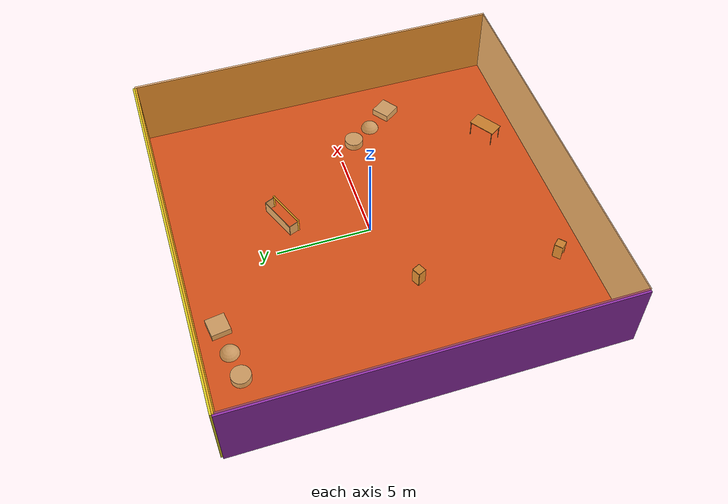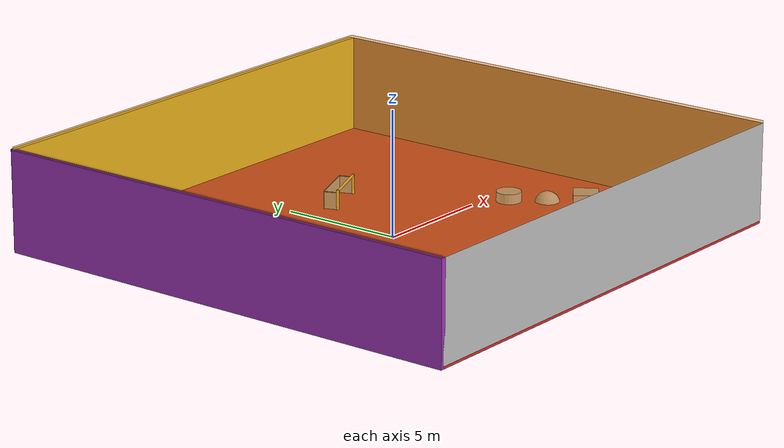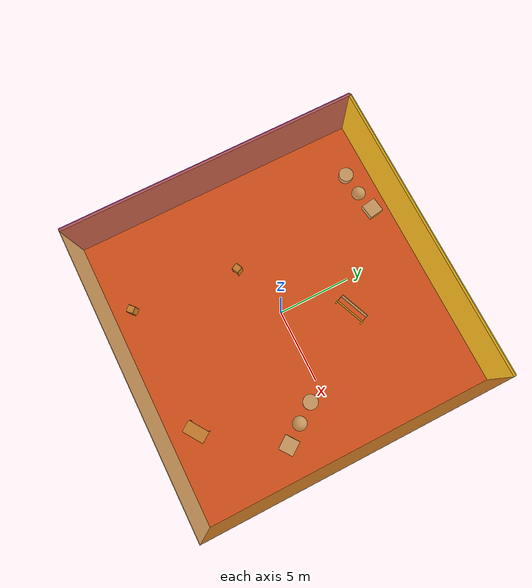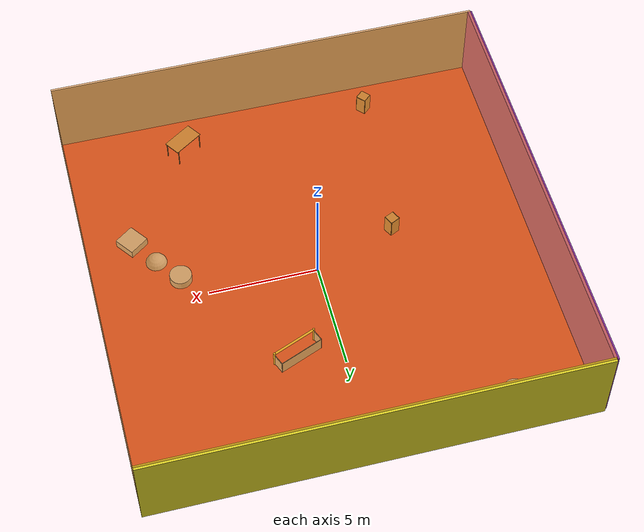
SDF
<sdf version="1.4">
 <world name="default">
  <physics type="ode">
   <max_step_size>0.001</max_step_size>
   <real_time_factor>1</real_time_factor>
   <real_time_update_rate>1000</real_time_update_rate>
   <gravity>0 0 -9.8</gravity>
  </physics>
  <scene><ambient>0.4 0.4 0.4 1</ambient><background>0.7 0.7 0.7 1</background><shadows>1</shadows></scene>
  <model name="Surrounding">
   <static>1</static>
   <link name="Ceiling">
    <collision name="Ceiling_Collision"><geometry><box><size>20 20 0.1</size></box></geometry></collision>
    <visual name="Ceiling_Visual">
     <geometry><box><size>20 20 0.1</size></box></geometry>
     <material>
      <script>
       <uri>file://media/materials/scripts/gazebo.material</uri>
       <name>Gazebo/OrangeTransparent</name>
      </script>
     </material>
    </visual>
    <pose>0 0 4.05 0 0 0</pose>
   </link>
   <link name="Wall_South">
    <collision name="Wall_South_Collision">
     <geometry><box><size>20 0 4</size></box></geometry>
     <pose>0 0 2 0 -0 0</pose>
    </collision>
    <visual name="Wall_South_Visual">
     <pose>0 0 2 0 -0 0</pose>
     <geometry><box><size>20 0 4</size></box></geometry>
     <material>
      <script><uri>file://media/materials/scripts/gazebo.material</uri><name>Gazebo/LightOff</name></script>
     </material>
    </visual>
    <velocity_decay><linear>0</linear><angular>0</angular></velocity_decay>
    <pose>0 -10 0 0 -0 0</pose>
   </link>
   <link name="Wall_East">
    <collision name="Wall_21_Collision">
     <geometry><box><size>20 0 4</size></box></geometry>
     <pose>0 0 2 0 -0 0</pose>
    </collision>
    <visual name="Wall_21_Visual">
     <pose>0 0 2 0 -0 0</pose>
     <geometry><box><size>20 0 4</size></box></geometry>
     <material>
      <script><uri>file://media/materials/scripts/gazebo.material</uri><name>Gazebo/WoodPallet</name></script>
     </material>
    </visual>
    <velocity_decay><linear>0</linear><angular>0</angular></velocity_decay>
    <pose>10 0 0 0 -0 1.5708</pose>
   </link>
   <link name="Wall_North">
    <collision name="Wall_22_Collision">
     <geometry><box><size>20 0.2 4</size></box></geometry>
     <pose>0 0 2 0 -0 0</pose>
    </collision>
    <visual name="Wall_22_Visual">
     <pose>0 0 2 0 -0 0</pose>
     <geometry><box><size>20 0.2 4</size></box></geometry>
     <material>
      <script><uri>file://media/materials/scripts/gazebo.material</uri><name>Gazebo/YellowGlow</name></script>
     </material>
    </visual>
    <velocity_decay><linear>0</linear><angular>0</angular></velocity_decay>
    <pose>0 10 0 0 -0 0</pose>
   </link>
   <link name="Wall_West">
    <collision name="Wall_23_Collision">
     <geometry><box><size>20 0.2 4</size></box></geometry>
     <pose>0 0 2 0 -0 0</pose>
    </collision>
    <visual name="Wall_23_Visual">
     <pose>0 0 2 0 -0 0</pose>
     <geometry><box><size>20 0.2 4</size></box></geometry>
     <material>
      <script><uri>file://media/materials/scripts/gazebo.material</uri><name>Gazebo/Purple</name></script>
     </material>
    </visual>
    <velocity_decay><linear>0</linear><angular>0</angular></velocity_decay>
    <pose>-10 0 0 0 0 -1.5708</pose>
   </link>
   <link name="Ground_link">
    <collision name="collision">
     <pose>0 0 .05 0 -0 0</pose>
     <geometry><box><size>20 20 0.1</size></box></geometry>
    </collision>
    <visual name="visual">
     <pose>0 0 .05 0 -0 0</pose>
     <geometry><box><size>20 20 0.1</size></box></geometry>
     <material>
      <script><uri>file://media/materials/scripts/gazebo.material</uri><name>Gazebo/RedGlow</name></script>
     </material>
    </visual>
   </link>
   <static>1</static>
  </model>
  <spherical_coordinates>
   <surface_model>EARTH_WGS84</surface_model>
   <latitude_deg>0</latitude_deg>
   <longitude_deg>0</longitude_deg>
   <elevation>0</elevation>
   <heading_deg>0</heading_deg>
  </spherical_coordinates>
  <light name="lightball_0" type="diffuse">
   <diffuse>0.8 0.8 0.8 1</diffuse>
   <specular>0.2 0.2 0.2 1</specular>
   <attenuation>
    <range>100</range>
    <constant>0.7</constant>
    <linear>0.01</linear>
    <quadratic>0.001</quadratic>
   </attenuation>
   <direction>-0.5 0.1 -0.9</direction>
   <pose>-0.539794181914 6.47369084595 3.40259066054 0 0 0</pose>
  </light>
  <light name="lightball_1" type="diffuse">
   <diffuse>0.8 0.8 0.8 1</diffuse>
   <specular>0.2 0.2 0.2 1</specular>
   <attenuation>
    <range>100</range>
    <constant>0.7</constant>
    <linear>0.01</linear>
    <quadratic>0.001</quadratic>
   </attenuation>
   <direction>-0.5 0.1 -0.9</direction>
   <pose>-3.94277377524 -1.76610099558 2.91931997268 0 0 0</pose>
  </light>
  <light name="lightball_2" type="diffuse">
   <diffuse>0.8 0.8 0.8 1</diffuse>
   <specular>0.2 0.2 0.2 1</specular>
   <attenuation>
    <range>100</range>
    <constant>0.7</constant>
    <linear>0.01</linear>
    <quadratic>0.001</quadratic>
   </attenuation>
   <direction>-0.5 0.1 -0.9</direction>
   <pose>0.517809145786 7.61231117209 0.791476994068 0 0 0</pose>
  </light>
  <light name="lightball_3" type="diffuse">
   <diffuse>0.8 0.8 0.8 1</diffuse>
   <specular>0.2 0.2 0.2 1</specular>
   <attenuation>
    <range>100</range>
    <constant>0.7</constant>
    <linear>0.01</linear>
    <quadratic>0.001</quadratic>
   </attenuation>
   <direction>-0.5 0.1 -0.9</direction>
   <pose>6.63136311313 -8.78010448321 1.00119870939 0 0 0</pose>
  </light>
  <light name="lightball_4" type="diffuse">
   <diffuse>0.8 0.8 0.8 1</diffuse>
   <specular>0.2 0.2 0.2 1</specular>
   <attenuation>
    <range>100</range>
    <constant>0.7</constant>
    <linear>0.01</linear>
    <quadratic>0.001</quadratic>
   </attenuation>
   <direction>-0.5 0.1 -0.9</direction>
   <pose>-7.07393256564 4.17339483249 2.28754815654 0 0 0</pose>
  </light>
  <light name="lightball_5" type="diffuse">
   <diffuse>0.8 0.8 0.8 1</diffuse>
   <specular>0.2 0.2 0.2 1</specular>
   <attenuation>
    <range>100</range>
    <constant>0.7</constant>
    <linear>0.01</linear>
    <quadratic>0.001</quadratic>
   </attenuation>
   <direction>-0.5 0.1 -0.9</direction>
   <pose>8.79594063095 -6.24532460182 3.61695231683 0 0 0</pose>
  </light>
  <light name="lightball_6" type="diffuse">
   <diffuse>0.8 0.8 0.8 1</diffuse>
   <specular>0.2 0.2 0.2 1</specular>
   <attenuation>
    <range>100</range>
    <constant>0.7</constant>
    <linear>0.01</linear>
    <quadratic>0.001</quadratic>
   </attenuation>
   <direction>-0.5 0.1 -0.9</direction>
   <pose>5.96598181273 2.80602041239 3.65271673075 0 0 0</pose>
  </light>
  <light name="lightball_7" type="diffuse">
   <diffuse>0.8 0.8 0.8 1</diffuse>
   <specular>0.2 0.2 0.2 1</specular>
   <attenuation>
    <range>100</range>
    <constant>0.7</constant>
    <linear>0.01</linear>
    <quadratic>0.001</quadratic>
   </attenuation>
   <direction>-0.5 0.1 -0.9</direction>
   <pose>-4.73052056357 5.67305430085 3.76589234988 0 0 0</pose>
  </light>
  <light name="lightball_8" type="diffuse">
   <diffuse>0.8 0.8 0.8 1</diffuse>
   <specular>0.2 0.2 0.2 1</specular>
   <attenuation>
    <range>100</range>
    <constant>0.7</constant>
    <linear>0.01</linear>
    <quadratic>0.001</quadratic>
   </attenuation>
   <direction>-0.5 0.1 -0.9</direction>
   <pose>-6.98507533121 -9.26108604014 2.0766836511 0 0 0</pose>
  </light>
  <include><uri>model://cabinet</uri><pose>-4.47494044514 -8.64511788407 0 0 0 0.738056012189</pose></include>
  <include><uri>model://cabinet</uri><pose>-3.81707188479 -1.31074306873 0 0 0 2.0210061584</pose></include>
  <include>
   <uri>model://textured_shapes</uri>
   <pose>-5.04550692669 8.59313779204 0 0 0 1.72107606774</pose>
  </include>
  <include>
   <uri>model://robocup_3Dsim_goal</uri>
   <pose>2.06969331126 3.95894662992 0 0 0 1.95863380517</pose>
  </include>
  <include><uri>model://table</uri><pose>4.43336691179 -8.18158333619 0 0 0 0.588700194624</pose></include>
  <include>
   <uri>model://textured_shapes</uri>
   <pose>6.95074401082 -2.19394387977 0 0 0 0.627988352213</pose>
  </include>
 </world>
</sdf>

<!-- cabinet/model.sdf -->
<sdf version="1.5">
  <model name="cabinet">
    <static>true</static>
    <link name="cabinet_bottom_plate">
      <inertial>
        <pose>0 0 -1 0 0 0</pose>
        <inertia>
          <ixx>2.050000</ixx>
          <ixy>0</ixy>
          <ixz>0</ixz>
          <iyy>2.050000</iyy>
          <iyz>0</iyz>
          <izz>2.050000</izz>
        </inertia>
        <mass>25.000000</mass>
      </inertial>
      <collision name="cabinet_bottom_plate_geom">
        <pose>0 0 0.010000 0 0 0</pose>
        <geometry>
          <box>
            <size>0.450000 0.450000 0.020000</size>
          </box>
        </geometry>
      </collision>
      <visual name="cabinet_bottom_plate_geom_visual">
        <pose>0 0 0.010000 0 0 0</pose>
        <geometry>
          <box>
            <size>0.450000 0.450000 0.020000</size>
          </box>
        </geometry>
        <material>
          <script>
            <uri>model://media/materials/scripts/gazebo.material</uri>
            <name>Gazebo/Wood</name>
          </script>
        </material>
      </visual>
      <collision name="cabinet_bottom_plate_geom_cabinet_back_plate">
        <pose>0.235000 0 0.510000 0 0 0</pose>
        <geometry>
          <box>
            <size>0.020000 0.450000 1.020000</size>
          </box>
        </geometry>
      </collision>
      <visual name="cabinet_bottom_plate_geom_cabinet_back_plate_visual">
        <pose>0.235000 0 0.510000 0 0 0</pose>
        <geometry>
          <box>
            <size>0.020000 0.450000 1.020000</size>
          </box>
        </geometry>
        <material>
          <script>
            <uri>model://media/materials/scripts/gazebo.material</uri>
            <name>Gazebo/Wood</name>
          </script>
        </material>
      </visual>
      <collision name="cabinet_bottom_plate_geom_cabinet_left_plate">
        <pose>0 0.235000 0.510000 0 0 0</pose>
        <geometry>
          <box>
            <size>0.450000 0.020000 1.020000</size>
          </box>
        </geometry>
      </collision>
      <visual name="cabinet_bottom_plate_geom_cabinet_left_plate_visual">
        <pose>0 0.235000 0.510000 0 0 0</pose>
        <geometry>
          <box>
            <size>0.450000 0.020000 1.020000</size>
          </box>
        </geometry>
        <material>
          <script>
            <uri>model://media/materials/scripts/gazebo.material</uri>
            <name>Gazebo/Wood</name>
          </script>
        </material>
      </visual>
      <collision name="cabinet_bottom_plate_geom_cabinet_middle_plate">
        <pose>0 0 0.510000 0 0 0</pose>
        <geometry>
          <box>
            <size>0.450000 0.450000 0.020000</size>
          </box>
        </geometry>
      </collision>
      <visual name="cabinet_bottom_plate_geom_cabinet_middle_plate_visual">
        <pose>0 0 0.510000 0 0 0</pose>
        <geometry>
          <box>
            <size>0.450000 0.450000 0.020000</size>
          </box>
        </geometry>
        <material>
          <script>
            <uri>model://media/materials/scripts/gazebo.material</uri>
            <name>Gazebo/Wood</name>
          </script>
        </material>
      </visual>
      <collision name="cabinet_bottom_plate_geom_cabinet_right_plate">
        <pose>0 -0.235000 0.510000 0 0 0</pose>
        <geometry>
          <box>
            <size>0.450000 0.020000 1.020000</size>
          </box>
        </geometry>
      </collision>
      <visual name="cabinet_bottom_plate_geom_cabinet_right_plate_visual">
        <pose>0 -0.235000 0.510000 0 0 0</pose>
        <geometry>
          <box>
            <size>0.450000 0.020000 1.020000</size>
          </box>
        </geometry>
        <material>
          <script>
            <uri>model://media/materials/scripts/gazebo.material</uri>
            <name>Gazebo/Wood</name>
          </script>
        </material>
      </visual>
      <collision name="cabinet_bottom_plate_geom_cabinet_top_plate">
        <pose>0 0 1.010000 0 0 0</pose>
        <geometry>
          <box>
            <size>0.450000 0.450000 0.020000</size>
          </box>
        </geometry>
      </collision>
      <visual name="cabinet_bottom_plate_geom_cabinet_top_plate_visual">
        <pose>0 0 1.010000 0 0 0</pose>
        <geometry>
          <box>
            <size>0.450000 0.450000 0.020000</size>
          </box>
        </geometry>
        <material>
          <script>
            <uri>model://media/materials/scripts/gazebo.material</uri>
            <name>Gazebo/Wood</name>
          </script>
        </material>
      </visual>
    </link>
  </model>
</sdf>

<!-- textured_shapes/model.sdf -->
<sdf version="1.6">
  <model name="textured_shapes">
    <pose>0 0 0.5 0 0 0</pose>
    <link name="box">
      <pose>0 -1.5 0 0 0 0</pose>
      <collision name="collision">
        <geometry>
          <box>
            <size>1 1 1</size>
          </box>
        </geometry>
      </collision>
      <visual name="visual">
        <geometry>
          <box>
            <size>1 1 1</size>
          </box>
        </geometry>
        <material>
          <script>
            <uri>model://../model_source/models/textured_shapes/materials/scripts</uri>
            <uri>model://../model_source/models/textured_shapes/materials/textures</uri>
            <name>TexturedShape/Squares</name>
          </script>
        </material>
      </visual>
    </link>
    <link name="sphere">
      <collision name="collision">
        <geometry>
          <sphere>
            <radius>0.5</radius>
          </sphere>
        </geometry>
      </collision>
      <visual name="visual">
        <geometry>
          <sphere>
            <radius>0.5</radius>
          </sphere>
        </geometry>
        <material>
          <script>
            <uri>model://../model_source/models/textured_shapes/materials/scripts</uri>
            <uri>model://../model_source/models/textured_shapes/materials/textures</uri>
            <name>TexturedShape/Squares</name>
          </script>
        </material>
      </visual>
    </link>
    <link name="cylinder">
      <pose>0 1.5 0 0 0 0</pose>
      <collision name="collision">
        <geometry>
          <cylinder>
            <radius>0.5</radius>
            <length>1</length>
          </cylinder>
        </geometry>
      </collision>
      <visual name="visual">
        <geometry>
          <cylinder>
            <radius>0.5</radius>
            <length>1</length>
          </cylinder>
        </geometry>
        <material>
          <script>
            <uri>model://../model_source/models/textured_shapes/materials/scripts</uri>
            <uri>model://../model_source/models/textured_shapes/materials/textures</uri>
            <name>TexturedShape/Squares</name>
          </script>
        </material>
      </visual>
    </link>
  </model>
</sdf>

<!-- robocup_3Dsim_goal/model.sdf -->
<sdf version="1.5">
  <model name="robocup_3d_goal">
    <static>true</static>
    <link name="left_post">
      <pose>0 1.05 0.45 0 0 0</pose>
      <collision name="collision">
        <geometry>
          <cylinder>
            <radius>0.05</radius>
            <length>0.9</length>
          </cylinder>
        </geometry>
      </collision>
      <visual name="visual">
        <geometry>
          <cylinder>
            <radius>0.05</radius>
            <length>0.9</length>
          </cylinder>
        </geometry>
        <material>
          <script>
            <uri>file://media/materials/scripts/gazebo.material</uri>
            <name>Gazebo/ZincYellow</name>
          </script>
        </material>
      </visual>
    </link>
    <link name="left_support_horiz_lower">
      <pose>0.30 1.05 0.01 0 0 0</pose>
      <collision name="collision">
        <geometry>
          <box>
            <size>0.50 0.02 0.02</size>
          </box>
        </geometry>
      </collision>
      <visual name="visual">
        <geometry>
          <box>
            <size>0.50 0.02 0.02</size>
          </box>
        </geometry>
        <material>
          <script>
            <uri>file://media/materials/scripts/gazebo.material</uri>
            <name>Gazebo/White</name>
          </script>
        </material>
      </visual>
    </link>
    <link name="left_support_horiz_upper">
      <pose>0.30 1.05 0.79 0 0 0</pose>
      <collision name="collision">
        <geometry>
          <box>
            <size>0.50 0.02 0.02</size>
          </box>
        </geometry>
      </collision>
      <visual name="visual">
        <geometry>
          <box>
            <size>0.50 0.02 0.02</size>
          </box>
        </geometry>
        <material>
          <script>
            <uri>file://media/materials/scripts/gazebo.material</uri>
            <name>Gazebo/White</name>
          </script>
        </material>
      </visual>
    </link>
    <link name="left_support_vertical">
      <pose>0.56 1.05 0.4 0 1.5708 0</pose>
      <collision name="collision">
        <geometry>
          <box>
            <size>0.80 0.02 0.02</size>
          </box>
        </geometry>
      </collision>
      <visual name="visual">
        <geometry>
          <box>
            <size>0.80 0.02 0.02</size>
          </box>
        </geometry>
        <material>
          <script>
            <uri>file://media/materials/scripts/gazebo.material</uri>
            <name>Gazebo/White</name>
          </script>
        </material>
      </visual>
    </link>
    <link name="right_support_horiz_lower">
      <pose>0.30 -1.05 0.01 0 0 0</pose>
      <collision name="collision">
        <geometry>
          <box>
            <size>0.50 0.02 0.02</size>
          </box>
        </geometry>
      </collision>
      <visual name="visual">
        <geometry>
          <box>
            <size>0.50 0.02 0.02</size>
          </box>
        </geometry>
        <material>
          <script>
            <uri>file://media/materials/scripts/gazebo.material</uri>
            <name>Gazebo/White</name>
          </script>
        </material>
      </visual>
    </link>
    <link name="right_support_horiz_upper">
      <pose>0.30 -1.05 0.79 0 0 0</pose>
      <collision name="collision">
        <geometry>
          <box>
            <size>0.50 0.02 0.02</size>
          </box>
        </geometry>
      </collision>
      <visual name="visual">
        <geometry>
          <box>
            <size>0.50 0.02 0.02</size>
          </box>
        </geometry>
        <material>
          <script>
            <uri>file://media/materials/scripts/gazebo.material</uri>
            <name>Gazebo/White</name>
          </script>
        </material>
      </visual>
    </link>
    <link name="right_support_vertical">
      <pose>0.56 -1.05 0.4 0 1.5708 0</pose>
      <collision name="collision">
        <geometry>
          <box>
            <size>0.80 0.02 0.02</size>
          </box>
        </geometry>
      </collision>
      <visual name="visual">
        <geometry>
          <box>
            <size>0.80 0.02 0.02</size>
          </box>
        </geometry>
        <material>
          <script>
            <uri>file://media/materials/scripts/gazebo.material</uri>
            <name>Gazebo/White</name>
          </script>
        </material>
      </visual>
    </link>
    <link name="center_support_horiz_lower">
      <pose>0.56 0 0.01 0 1.5708 0</pose>
      <collision name="collision">
        <geometry>
          <box>
            <size>0.02 2.08 0.02</size>
          </box>
        </geometry>
      </collision>
      <visual name="visual">
        <geometry>
          <box>
            <size>0.02 2.08 0.02</size>
          </box>
        </geometry>
        <material>
          <script>
            <uri>file://media/materials/scripts/gazebo.material</uri>
            <name>Gazebo/White</name>
          </script>
        </material>
      </visual>
    </link>
    <link name="center_support_horiz_upper">
      <pose>0.56 0 0.79 0 1.5708 0</pose>
      <collision name="collision">
        <geometry>
          <box>
            <size>0.02 2.08 0.02</size>
          </box>
        </geometry>
      </collision>
      <visual name="visual">
        <geometry>
          <box>
            <size>0.02 2.08 0.02</size>
          </box>
        </geometry>
        <material>
          <script>
            <uri>file://media/materials/scripts/gazebo.material</uri>
            <name>Gazebo/White</name>
          </script>
        </material>
      </visual>
    </link>
    <link name="right_post">
      <pose>0 -1.05 0.45 0 0 0</pose>
      <collision name="collision">
        <geometry>
          <cylinder>
            <radius>0.05</radius>
            <length>0.9</length>
          </cylinder>
        </geometry>
      </collision>
      <visual name="visual">
        <geometry>
          <cylinder>
            <radius>0.05</radius>
            <length>0.9</length>
          </cylinder>
        </geometry>
        <material>
          <script>
            <uri>file://media/materials/scripts/gazebo.material</uri>
            <name>Gazebo/ZincYellow</name>
          </script>
        </material>
      </visual>
    </link>
    <link name="crossbar">
      <pose>0 0 0.85 1.57 1.57 0</pose>
      <collision name="collision">
        <geometry>
          <cylinder>
            <radius>0.05</radius>
            <length>2.0</length>
          </cylinder>
        </geometry>
      </collision>
      <visual name="visual">
        <geometry>
          <cylinder>
            <radius>0.05</radius>
            <length>2.0</length>
          </cylinder>
        </geometry>
        <material>
          <script>
            <uri>file://media/materials/scripts/gazebo.material</uri>
            <name>Gazebo/ZincYellow</name>
          </script>
        </material>
      </visual>
    </link>
    <link name="center_net">
      <pose>0.56 0 0.40 0 0 0</pose>
      <collision name="collision">
        <geometry>
          <box>
            <size>0.01 2.1 0.80</size>
          </box>
        </geometry>
      </collision>
      <visual name="visual">
        <geometry>
          <box>
            <size>0.01 2.1 0.80</size>
          </box>
        </geometry>
        <material>
          <script>
            <uri>model://../model_source/models/robocup09_spl_field/materials/scripts/</uri>
            <uri>model://../model_source/models/robocup09_spl_field/materials/textures/</uri>
            <name>RoboCup/Net</name>
          </script>
        </material>
      </visual>
    </link>
    <link name="left_net">
      <pose>0.30 1.05 0.40 0 0 0</pose>
      <collision name="collision">
        <geometry>
          <box>
            <size>0.50 0.01 0.76</size>
          </box>
        </geometry>
      </collision>
      <visual name="visual">
        <geometry>
          <box>
            <size>0.50 0.01 0.76</size>
          </box>
        </geometry>
        <material>
          <script>
            <uri>model://../model_source/models/robocup09_spl_field/materials/scripts/</uri>
            <uri>model://../model_source/models/robocup09_spl_field/materials/textures/</uri>
            <name>RoboCup/Net</name>
          </script>
        </material>
      </visual>
    </link>
    <link name="right_net">
      <pose>0.30 -1.05 0.40 0 0 0</pose>
      <collision name="collision">
        <geometry>
          <box>
            <size>0.50 0.01 0.76</size>
          </box>
        </geometry>
      </collision>
      <visual name="visual">
        <geometry>
          <box>
            <size>0.50 0.01 0.76</size>
          </box>
        </geometry>
        <material>
          <script>
            <uri>model://../model_source/models/robocup09_spl_field/materials/scripts/</uri>
            <uri>model://../model_source/models/robocup09_spl_field/materials/textures/</uri>
            <name>RoboCup/Net</name>
          </script>
        </material>
      </visual>
    </link>
  </model>
</sdf>

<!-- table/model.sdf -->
<sdf version="1.5">
  <model name="table">
    <static>true</static>
    <link name="link">
      <collision name="surface">
        <pose>0 0 1.0 0 0 0</pose>
        <geometry>
          <box>
            <size>1.5 0.8 0.03</size>
          </box>
        </geometry>
        <surface>
          <friction>
            <ode>
              <mu>0.6</mu>
              <mu2>0.6</mu2>
            </ode>
          </friction>
        </surface>
      </collision>
      <visual name="visual1">
        <pose>0 0 1.0 0 0 0</pose>
        <geometry>
          <box>
            <size>1.5 0.8 0.03</size>
          </box>
        </geometry>
        <material>
          <script>
            <uri>model://media/materials/scripts/gazebo.material</uri>
            <name>Gazebo/Wood</name>
          </script>
        </material>
      </visual>
      <collision name="front_left_leg">
        <pose>0.68 0.38 0.5 0 0 0</pose>
        <geometry>
          <cylinder>
            <radius>0.02</radius>
            <length>1.0</length>
          </cylinder>
        </geometry>
      </collision>
      <visual name="front_left_leg">
        <pose>0.68 0.38 0.5 0 0 0</pose>
        <geometry>
          <cylinder>
            <radius>0.02</radius>
            <length>1.0</length>
          </cylinder>
        </geometry>
        <material>
          <script>
            <uri>model://media/materials/scripts/gazebo.material</uri>
            <name>Gazebo/Grey</name>
          </script>
        </material>
      </visual>
      <collision name="front_right_leg">
        <pose>0.68 -0.38 0.5 0 0 0</pose>
        <geometry>
          <cylinder>
            <radius>0.02</radius>
            <length>1.0</length>
          </cylinder>
        </geometry>
      </collision>
      <visual name="front_right_leg">
        <pose>0.68 -0.38 0.5 0 0 0</pose>
        <geometry>
          <cylinder>
            <radius>0.02</radius>
            <length>1.0</length>
          </cylinder>
        </geometry>
        <material>
          <script>
            <uri>model://media/materials/scripts/gazebo.material</uri>
            <name>Gazebo/Grey</name>
          </script>
        </material>
      </visual>
      <collision name="back_right_leg">
        <pose>-0.68 -0.38 0.5 0 0 0</pose>
        <geometry>
          <cylinder>
            <radius>0.02</radius>
            <length>1.0</length>
          </cylinder>
        </geometry>
      </collision>
      <visual name="back_right_leg">
        <pose>-0.68 -0.38 0.5 0 0 0</pose>
        <geometry>
          <cylinder>
            <radius>0.02</radius>
            <length>1.0</length>
          </cylinder>
        </geometry>
        <material>
          <script>
            <uri>model://media/materials/scripts/gazebo.material</uri>
            <name>Gazebo/Grey</name>
          </script>
        </material>
      </visual>
      <collision name="back_left_leg">
        <pose>-0.68 0.38 0.5 0 0 0</pose>
        <geometry>
          <cylinder>
            <radius>0.02</radius>
            <length>1.0</length>
          </cylinder>
        </geometry>
      </collision>
      <visual name="back_left_leg">
        <pose>-0.68 0.38 0.5 0 0 0</pose>
        <geometry>
          <cylinder>
            <radius>0.02</radius>
            <length>1.0</length>
          </cylinder>
        </geometry>
        <material>
          <script>
            <uri>model://media/materials/scripts/gazebo.material</uri>
            <name>Gazebo/Grey</name>
          </script>
        </material>
      </visual>
    </link>
  </model>
</sdf>
